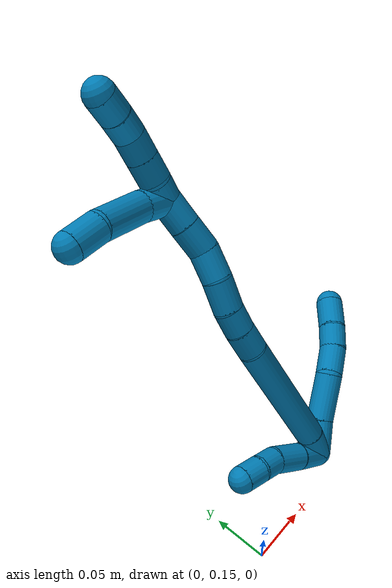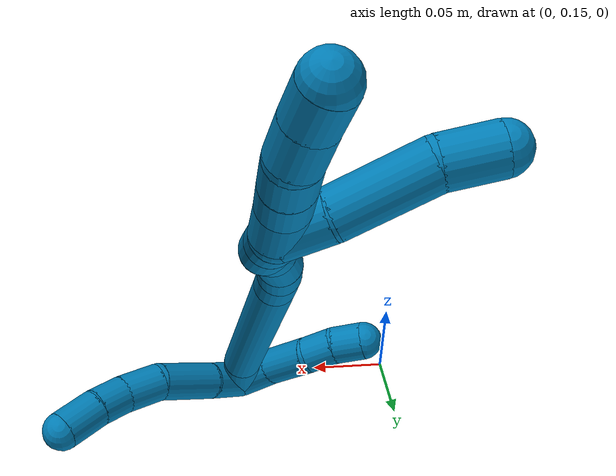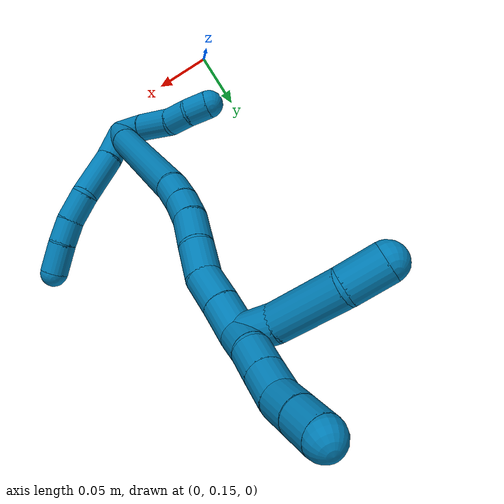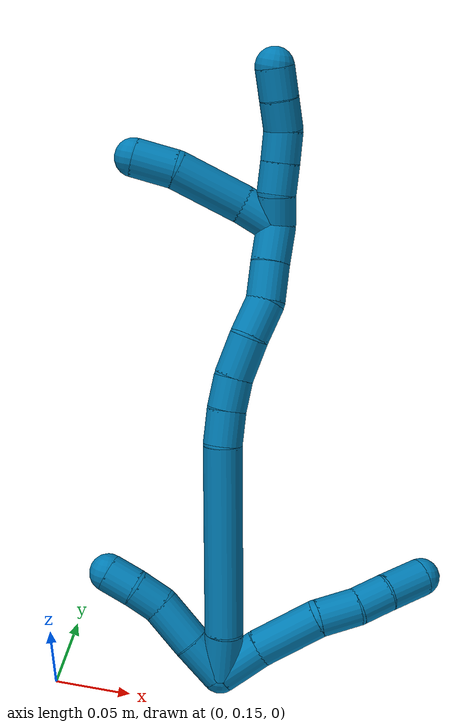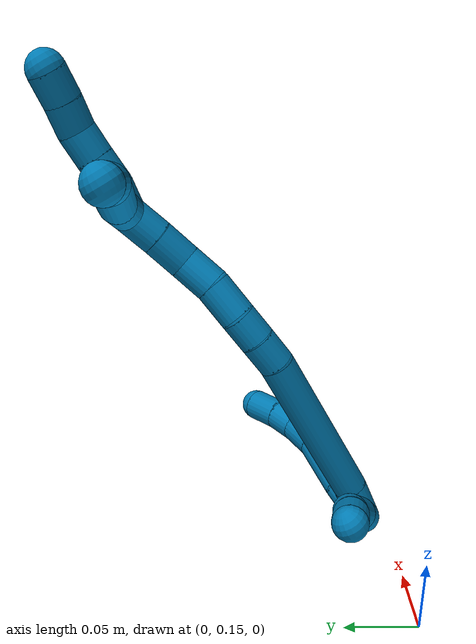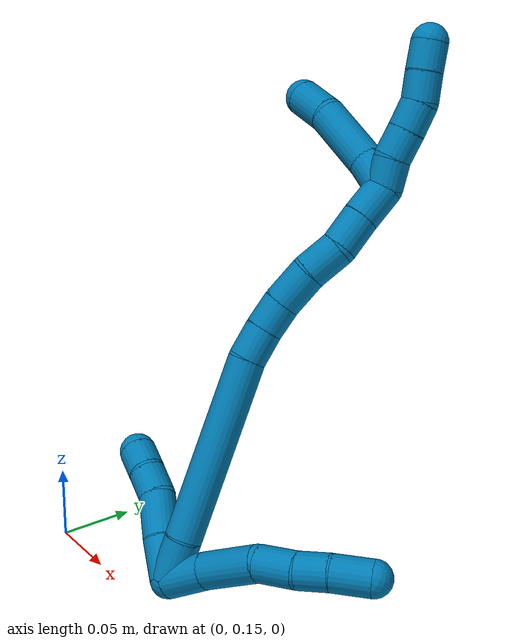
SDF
<sdf version="1.7">
 <world name="default">
  <model name="9">
   <static>0</static>
   <link name="9">
    <collision name="collision-cylinder-e_1_2_8">
     <pose>0.001088 0.011171 0.010316 -0.825137 0.071416 -0.031269</pose>
     <geometry><cylinder><radius>0.0125</radius><length>0.030489</length></cylinder></geometry>
     <surface>
      <friction><ode><mu>1.16</mu><mu2>1.16</mu2><slip1>0</slip1><slip2>0</slip2></ode></friction>
      <contact><ode><kp>1e+06</kp><kd>1</kd><max_vel>0</max_vel><min_depth>0.001</min_depth></ode></contact>
     </surface>
    </collision>
    <visual name="visual-cylinder-e_1_2_8">
     <pose>0.001088 0.011171 0.010316 -0.825137 0.071416 -0.031269</pose>
     <geometry><cylinder><radius>0.0125</radius><length>0.030489</length></cylinder></geometry>
     <material><ambient>0 0.490196 0.709804 1</ambient></material>
    </visual>
    <collision name="collision-cylinder-e_2_8_9">
     <pose>0.00541 0.03921 0.033685 -0.912263 0.150486 -0.073941</pose>
     <geometry><cylinder><radius>0.0125</radius><length>0.043146</length></cylinder></geometry>
     <surface>
      <friction><ode><mu>1.16</mu><mu2>1.16</mu2><slip1>0</slip1><slip2>0</slip2></ode></friction>
      <contact><ode><kp>1e+06</kp><kd>1</kd><max_vel>0</max_vel><min_depth>0.001</min_depth></ode></contact>
     </surface>
    </collision>
    <visual name="visual-cylinder-e_2_8_9">
     <pose>0.00541 0.03921 0.033685 -0.912263 0.150486 -0.073941</pose>
     <geometry><cylinder><radius>0.0125</radius><length>0.043146</length></cylinder></geometry>
     <material><ambient>0 0.490196 0.709804 1</ambient></material>
    </visual>
    <collision name="collision-cylinder-e_3_9_10">
     <pose>0.008207 0.068648 0.051662 -1.19742 -0.032324 0.022054</pose>
     <geometry><cylinder><radius>0.0125</radius><length>0.027012</length></cylinder></geometry>
     <surface>
      <friction><ode><mu>1.16</mu><mu2>1.16</mu2><slip1>0</slip1><slip2>0</slip2></ode></friction>
      <contact><ode><kp>1e+06</kp><kd>1</kd><max_vel>0</max_vel><min_depth>0.001</min_depth></ode></contact>
     </surface>
    </collision>
    <visual name="visual-cylinder-e_3_9_10">
     <pose>0.008207 0.068648 0.051662 -1.19742 -0.032324 0.022054</pose>
     <geometry><cylinder><radius>0.0125</radius><length>0.027012</length></cylinder></geometry>
     <material><ambient>0 0.490196 0.709804 1</ambient></material>
    </visual>
    <collision name="collision-cylinder-e_4_10_11">
     <pose>0.005812 0.09086 0.061459 -1.10282 -0.179328 0.110479</pose>
     <geometry><cylinder><radius>0.0125</radius><length>0.02196</length></cylinder></geometry>
     <surface>
      <friction><ode><mu>1.16</mu><mu2>1.16</mu2><slip1>0</slip1><slip2>0</slip2></ode></friction>
      <contact><ode><kp>1e+06</kp><kd>1</kd><max_vel>0</max_vel><min_depth>0.001</min_depth></ode></contact>
     </surface>
    </collision>
    <visual name="visual-cylinder-e_4_10_11">
     <pose>0.005812 0.09086 0.061459 -1.10282 -0.179328 0.110479</pose>
     <geometry><cylinder><radius>0.0125</radius><length>0.02196</length></cylinder></geometry>
     <material><ambient>0 0.490196 0.709804 1</ambient></material>
    </visual>
    <collision name="collision-cylinder-e_5_11_6">
     <pose>7e-05 0.112679 0.071332 -1.18124 -0.279915 0.188347</pose>
     <geometry><cylinder><radius>0.0125</radius><length>0.027393</length></cylinder></geometry>
     <surface>
      <friction><ode><mu>1.16</mu><mu2>1.16</mu2><slip1>0</slip1><slip2>0</slip2></ode></friction>
      <contact><ode><kp>1e+06</kp><kd>1</kd><max_vel>0</max_vel><min_depth>0.001</min_depth></ode></contact>
     </surface>
    </collision>
    <visual name="visual-cylinder-e_5_11_6">
     <pose>7e-05 0.112679 0.071332 -1.18124 -0.279915 0.188347</pose>
     <geometry><cylinder><radius>0.0125</radius><length>0.027393</length></cylinder></geometry>
     <material><ambient>0 0.490196 0.709804 1</ambient></material>
    </visual>
    <collision name="collision-cylinder-e_1_2_12">
     <pose>-0.003189 -0.01066 0.009152 0.861366 -0.223189 -0.102881</pose>
     <geometry><cylinder><radius>0.0125</radius><length>0.028813</length></cylinder></geometry>
     <surface>
      <friction><ode><mu>1.16</mu><mu2>1.16</mu2><slip1>0</slip1><slip2>0</slip2></ode></friction>
      <contact><ode><kp>1e+06</kp><kd>1</kd><max_vel>0</max_vel><min_depth>0.001</min_depth></ode></contact>
     </surface>
    </collision>
    <visual name="visual-cylinder-e_1_2_12">
     <pose>-0.003189 -0.01066 0.009152 0.861366 -0.223189 -0.102881</pose>
     <geometry><cylinder><radius>0.0125</radius><length>0.028813</length></cylinder></geometry>
     <material><ambient>0 0.490196 0.709804 1</ambient></material>
    </visual>
    <collision name="collision-cylinder-e_2_12_13">
     <pose>-0.011023 -0.032312 0.028312 0.832224 -0.302828 -0.134653</pose>
     <geometry><cylinder><radius>0.0125</radius><length>0.031151</length></cylinder></geometry>
     <surface>
      <friction><ode><mu>1.16</mu><mu2>1.16</mu2><slip1>0</slip1><slip2>0</slip2></ode></friction>
      <contact><ode><kp>1e+06</kp><kd>1</kd><max_vel>0</max_vel><min_depth>0.001</min_depth></ode></contact>
     </surface>
    </collision>
    <visual name="visual-cylinder-e_2_12_13">
     <pose>-0.011023 -0.032312 0.028312 0.832224 -0.302828 -0.134653</pose>
     <geometry><cylinder><radius>0.0125</radius><length>0.031151</length></cylinder></geometry>
     <material><ambient>0 0.490196 0.709804 1</ambient></material>
    </visual>
    <collision name="collision-cylinder-e_3_13_14">
     <pose>-0.017823 -0.052051 0.042702 1.10641 -0.216911 -0.134273</pose>
     <geometry><cylinder><radius>0.0125</radius><length>0.020032</length></cylinder></geometry>
     <surface>
      <friction><ode><mu>1.16</mu><mu2>1.16</mu2><slip1>0</slip1><slip2>0</slip2></ode></friction>
      <contact><ode><kp>1e+06</kp><kd>1</kd><max_vel>0</max_vel><min_depth>0.001</min_depth></ode></contact>
     </surface>
    </collision>
    <visual name="visual-cylinder-e_3_13_14">
     <pose>-0.017823 -0.052051 0.042702 1.10641 -0.216911 -0.134273</pose>
     <geometry><cylinder><radius>0.0125</radius><length>0.020032</length></cylinder></geometry>
     <material><ambient>0 0.490196 0.709804 1</ambient></material>
    </visual>
    <collision name="collision-cylinder-e_4_14_5">
     <pose>-0.023609 -0.069533 0.050326 1.21538 -0.371424 -0.259859</pose>
     <geometry><cylinder><radius>0.0125</radius><length>0.020004</length></cylinder></geometry>
     <surface>
      <friction><ode><mu>1.16</mu><mu2>1.16</mu2><slip1>0</slip1><slip2>0</slip2></ode></friction>
      <contact><ode><kp>1e+06</kp><kd>1</kd><max_vel>0</max_vel><min_depth>0.001</min_depth></ode></contact>
     </surface>
    </collision>
    <visual name="visual-cylinder-e_4_14_5">
     <pose>-0.023609 -0.069533 0.050326 1.21538 -0.371424 -0.259859</pose>
     <geometry><cylinder><radius>0.0125</radius><length>0.020004</length></cylinder></geometry>
     <material><ambient>0 0.490196 0.709804 1</ambient></material>
    </visual>
    <collision name="collision-cylinder-e_1_2_15">
     <pose>0.001216 -0.001343 0.014865 0.090079 0.081306 0.003666</pose>
     <geometry><cylinder><radius>0.0125</radius><length>0.02995</length></cylinder></geometry>
     <surface>
      <friction><ode><mu>1.16</mu><mu2>1.16</mu2><slip1>0</slip1><slip2>0</slip2></ode></friction>
      <contact><ode><kp>1e+06</kp><kd>1</kd><max_vel>0</max_vel><min_depth>0.001</min_depth></ode></contact>
     </surface>
    </collision>
    <visual name="visual-cylinder-e_1_2_15">
     <pose>0.001216 -0.001343 0.014865 0.090079 0.081306 0.003666</pose>
     <geometry><cylinder><radius>0.0125</radius><length>0.02995</length></cylinder></geometry>
     <material><ambient>0 0.490196 0.709804 1</ambient></material>
    </visual>
    <collision name="collision-cylinder-e_2_15_16">
     <pose>2.6e-05 -0.012204 0.091655 0.152523 -0.038389 -0.002934</pose>
     <geometry><cylinder><radius>0.0125</radius><length>0.125397</length></cylinder></geometry>
     <surface>
      <friction><ode><mu>1.16</mu><mu2>1.16</mu2><slip1>0</slip1><slip2>0</slip2></ode></friction>
      <contact><ode><kp>1e+06</kp><kd>1</kd><max_vel>0</max_vel><min_depth>0.001</min_depth></ode></contact>
     </surface>
    </collision>
    <visual name="visual-cylinder-e_2_15_16">
     <pose>2.6e-05 -0.012204 0.091655 0.152523 -0.038389 -0.002934</pose>
     <geometry><cylinder><radius>0.0125</radius><length>0.125397</length></cylinder></geometry>
     <material><ambient>0 0.490196 0.709804 1</ambient></material>
    </visual>
    <collision name="collision-cylinder-e_3_16_17">
     <pose>-0.004012 -0.021849 0.164775 0.011217 -0.144724 -0.000813</pose>
     <geometry><cylinder><radius>0.0125</radius><length>0.02263</length></cylinder></geometry>
     <surface>
      <friction><ode><mu>1.16</mu><mu2>1.16</mu2><slip1>0</slip1><slip2>0</slip2></ode></friction>
      <contact><ode><kp>1e+06</kp><kd>1</kd><max_vel>0</max_vel><min_depth>0.001</min_depth></ode></contact>
     </surface>
    </collision>
    <visual name="visual-cylinder-e_3_16_17">
     <pose>-0.004012 -0.021849 0.164775 0.011217 -0.144724 -0.000813</pose>
     <geometry><cylinder><radius>0.0125</radius><length>0.02263</length></cylinder></geometry>
     <material><ambient>0 0.490196 0.709804 1</ambient></material>
    </visual>
    <collision name="collision-cylinder-e_4_17_18">
     <pose>-0.007022 -0.021077 0.186244 -0.087116 -0.132854 0.005799</pose>
     <geometry><cylinder><radius>0.0125</radius><length>0.020806</length></cylinder></geometry>
     <surface>
      <friction><ode><mu>1.16</mu><mu2>1.16</mu2><slip1>0</slip1><slip2>0</slip2></ode></friction>
      <contact><ode><kp>1e+06</kp><kd>1</kd><max_vel>0</max_vel><min_depth>0.001</min_depth></ode></contact>
     </surface>
    </collision>
    <visual name="visual-cylinder-e_4_17_18">
     <pose>-0.007022 -0.021077 0.186244 -0.087116 -0.132854 0.005799</pose>
     <geometry><cylinder><radius>0.0125</radius><length>0.020806</length></cylinder></geometry>
     <material><ambient>0 0.490196 0.709804 1</ambient></material>
    </visual>
    <collision name="collision-cylinder-e_5_18_19">
     <pose>-0.009684 -0.016977 0.20946 -0.242607 -0.096005 0.011712</pose>
     <geometry><cylinder><radius>0.0125</radius><length>0.026792</length></cylinder></geometry>
     <surface>
      <friction><ode><mu>1.16</mu><mu2>1.16</mu2><slip1>0</slip1><slip2>0</slip2></ode></friction>
      <contact><ode><kp>1e+06</kp><kd>1</kd><max_vel>0</max_vel><min_depth>0.001</min_depth></ode></contact>
     </surface>
    </collision>
    <visual name="visual-cylinder-e_5_18_19">
     <pose>-0.009684 -0.016977 0.20946 -0.242607 -0.096005 0.011712</pose>
     <geometry><cylinder><radius>0.0125</radius><length>0.026792</length></cylinder></geometry>
     <material><ambient>0 0.490196 0.709804 1</ambient></material>
    </visual>
    <collision name="collision-cylinder-e_6_19_20">
     <pose>-0.014055 -0.009637 0.233729 -0.35018 -0.250632 0.044563</pose>
     <geometry><cylinder><radius>0.0125</radius><length>0.024891</length></cylinder></geometry>
     <surface>
      <friction><ode><mu>1.16</mu><mu2>1.16</mu2><slip1>0</slip1><slip2>0</slip2></ode></friction>
      <contact><ode><kp>1e+06</kp><kd>1</kd><max_vel>0</max_vel><min_depth>0.001</min_depth></ode></contact>
     </surface>
    </collision>
    <visual name="visual-cylinder-e_6_19_20">
     <pose>-0.014055 -0.009637 0.233729 -0.35018 -0.250632 0.044563</pose>
     <geometry><cylinder><radius>0.0125</radius><length>0.024891</length></cylinder></geometry>
     <material><ambient>0 0.490196 0.709804 1</ambient></material>
    </visual>
    <collision name="collision-cylinder-e_7_20_21">
     <pose>-0.020852 -0.005074 0.256777 -0.036436 -0.306375 0.005626</pose>
     <geometry><cylinder><radius>0.0125</radius><length>0.024608</length></cylinder></geometry>
     <surface>
      <friction><ode><mu>1.16</mu><mu2>1.16</mu2><slip1>0</slip1><slip2>0</slip2></ode></friction>
      <contact><ode><kp>1e+06</kp><kd>1</kd><max_vel>0</max_vel><min_depth>0.001</min_depth></ode></contact>
     </surface>
    </collision>
    <visual name="visual-cylinder-e_7_20_21">
     <pose>-0.020852 -0.005074 0.256777 -0.036436 -0.306375 0.005626</pose>
     <geometry><cylinder><radius>0.0125</radius><length>0.024608</length></cylinder></geometry>
     <material><ambient>0 0.490196 0.709804 1</ambient></material>
    </visual>
    <collision name="collision-cylinder-e_8_21_1">
     <pose>-0.028608 -0.003658 0.280247 -0.083897 -0.330532 0.014001</pose>
     <geometry><cylinder><radius>0.0125</radius><length>0.024927</length></cylinder></geometry>
     <surface>
      <friction><ode><mu>1.16</mu><mu2>1.16</mu2><slip1>0</slip1><slip2>0</slip2></ode></friction>
      <contact><ode><kp>1e+06</kp><kd>1</kd><max_vel>0</max_vel><min_depth>0.001</min_depth></ode></contact>
     </surface>
    </collision>
    <visual name="visual-cylinder-e_8_21_1">
     <pose>-0.028608 -0.003658 0.280247 -0.083897 -0.330532 0.014001</pose>
     <geometry><cylinder><radius>0.0125</radius><length>0.024927</length></cylinder></geometry>
     <material><ambient>0 0.490196 0.709804 1</ambient></material>
    </visual>
    <collision name="collision-cylinder-e_1_1_22">
     <pose>-0.035638 -0.013803 0.29682 1.16176 -0.241207 -0.158773</pose>
     <geometry><cylinder><radius>0.0125</radius><length>0.02499</length></cylinder></geometry>
     <surface>
      <friction><ode><mu>1.16</mu><mu2>1.16</mu2><slip1>0</slip1><slip2>0</slip2></ode></friction>
      <contact><ode><kp>1e+06</kp><kd>1</kd><max_vel>0</max_vel><min_depth>0.001</min_depth></ode></contact>
     </surface>
    </collision>
    <visual name="visual-cylinder-e_1_1_22">
     <pose>-0.035638 -0.013803 0.29682 1.16176 -0.241207 -0.158773</pose>
     <geometry><cylinder><radius>0.0125</radius><length>0.02499</length></cylinder></geometry>
     <material><ambient>0 0.490196 0.709804 1</ambient></material>
    </visual>
    <collision name="collision-cylinder-e_2_22_23">
     <pose>-0.041018 -0.04729 0.309445 1.23513 -0.100845 -0.071654</pose>
     <geometry><cylinder><radius>0.0125</radius><length>0.047594</length></cylinder></geometry>
     <surface>
      <friction><ode><mu>1.16</mu><mu2>1.16</mu2><slip1>0</slip1><slip2>0</slip2></ode></friction>
      <contact><ode><kp>1e+06</kp><kd>1</kd><max_vel>0</max_vel><min_depth>0.001</min_depth></ode></contact>
     </surface>
    </collision>
    <visual name="visual-cylinder-e_2_22_23">
     <pose>-0.041018 -0.04729 0.309445 1.23513 -0.100845 -0.071654</pose>
     <geometry><cylinder><radius>0.0125</radius><length>0.047594</length></cylinder></geometry>
     <material><ambient>0 0.490196 0.709804 1</ambient></material>
    </visual>
    <collision name="collision-cylinder-e_3_23_4">
     <pose>-0.047032 -0.082766 0.318874 1.44713 -0.267076 -0.236241</pose>
     <geometry><cylinder><radius>0.0125</radius><length>0.027416</length></cylinder></geometry>
     <surface>
      <friction><ode><mu>1.16</mu><mu2>1.16</mu2><slip1>0</slip1><slip2>0</slip2></ode></friction>
      <contact><ode><kp>1e+06</kp><kd>1</kd><max_vel>0</max_vel><min_depth>0.001</min_depth></ode></contact>
     </surface>
    </collision>
    <visual name="visual-cylinder-e_3_23_4">
     <pose>-0.047032 -0.082766 0.318874 1.44713 -0.267076 -0.236241</pose>
     <geometry><cylinder><radius>0.0125</radius><length>0.027416</length></cylinder></geometry>
     <material><ambient>0 0.490196 0.709804 1</ambient></material>
    </visual>
    <collision name="collision-cylinder-e_1_1_24">
     <pose>-0.031769 -0.004454 0.301794 0.179978 0.088525 0.007993</pose>
     <geometry><cylinder><radius>0.0125</radius><length>0.02</length></cylinder></geometry>
     <surface>
      <friction><ode><mu>1.16</mu><mu2>1.16</mu2><slip1>0</slip1><slip2>0</slip2></ode></friction>
      <contact><ode><kp>1e+06</kp><kd>1</kd><max_vel>0</max_vel><min_depth>0.001</min_depth></ode></contact>
     </surface>
    </collision>
    <visual name="visual-cylinder-e_1_1_24">
     <pose>-0.031769 -0.004454 0.301794 0.179978 0.088525 0.007993</pose>
     <geometry><cylinder><radius>0.0125</radius><length>0.02</length></cylinder></geometry>
     <material><ambient>0 0.490196 0.709804 1</ambient></material>
    </visual>
    <collision name="collision-cylinder-e_2_24_25">
     <pose>-0.031613 -0.006434 0.321566 0.019808 -0.072848 -0.000722</pose>
     <geometry><cylinder><radius>0.0125</radius><length>0.02</length></cylinder></geometry>
     <surface>
      <friction><ode><mu>1.16</mu><mu2>1.16</mu2><slip1>0</slip1><slip2>0</slip2></ode></friction>
      <contact><ode><kp>1e+06</kp><kd>1</kd><max_vel>0</max_vel><min_depth>0.001</min_depth></ode></contact>
     </surface>
    </collision>
    <visual name="visual-cylinder-e_2_24_25">
     <pose>-0.031613 -0.006434 0.321566 0.019808 -0.072848 -0.000722</pose>
     <geometry><cylinder><radius>0.0125</radius><length>0.02</length></cylinder></geometry>
     <material><ambient>0 0.490196 0.709804 1</ambient></material>
    </visual>
    <collision name="collision-cylinder-e_3_25_26">
     <pose>-0.032846 -0.007093 0.341514 0.046174 -0.050517 -0.001167</pose>
     <geometry><cylinder><radius>0.0125</radius><length>0.02</length></cylinder></geometry>
     <surface>
      <friction><ode><mu>1.16</mu><mu2>1.16</mu2><slip1>0</slip1><slip2>0</slip2></ode></friction>
      <contact><ode><kp>1e+06</kp><kd>1</kd><max_vel>0</max_vel><min_depth>0.001</min_depth></ode></contact>
     </surface>
    </collision>
    <visual name="visual-cylinder-e_3_25_26">
     <pose>-0.032846 -0.007093 0.341514 0.046174 -0.050517 -0.001167</pose>
     <geometry><cylinder><radius>0.0125</radius><length>0.02</length></cylinder></geometry>
     <material><ambient>0 0.490196 0.709804 1</ambient></material>
    </visual>
    <collision name="collision-cylinder-e_4_26_27">
     <pose>-0.032601 -0.010658 0.360967 0.316596 0.075002 0.011978</pose>
     <geometry><cylinder><radius>0.0125</radius><length>0.02</length></cylinder></geometry>
     <surface>
      <friction><ode><mu>1.16</mu><mu2>1.16</mu2><slip1>0</slip1><slip2>0</slip2></ode></friction>
      <contact><ode><kp>1e+06</kp><kd>1</kd><max_vel>0</max_vel><min_depth>0.001</min_depth></ode></contact>
     </surface>
    </collision>
    <visual name="visual-cylinder-e_4_26_27">
     <pose>-0.032601 -0.010658 0.360967 0.316596 0.075002 0.011978</pose>
     <geometry><cylinder><radius>0.0125</radius><length>0.02</length></cylinder></geometry>
     <material><ambient>0 0.490196 0.709804 1</ambient></material>
    </visual>
    <collision name="collision-cylinder-e_5_27_3">
     <pose>-0.031701 -0.016758 0.379983 0.304271 0.015104 0.002316</pose>
     <geometry><cylinder><radius>0.0125</radius><length>0.02</length></cylinder></geometry>
     <surface>
      <friction><ode><mu>1.16</mu><mu2>1.16</mu2><slip1>0</slip1><slip2>0</slip2></ode></friction>
      <contact><ode><kp>1e+06</kp><kd>1</kd><max_vel>0</max_vel><min_depth>0.001</min_depth></ode></contact>
     </surface>
    </collision>
    <visual name="visual-cylinder-e_5_27_3">
     <pose>-0.031701 -0.016758 0.379983 0.304271 0.015104 0.002316</pose>
     <geometry><cylinder><radius>0.0125</radius><length>0.02</length></cylinder></geometry>
     <material><ambient>0 0.490196 0.709804 1</ambient></material>
    </visual>
    <collision name="collision-sphere-3">
     <pose>-0.03155 -0.019754 0.389522 0 -0 0</pose>
     <geometry><sphere><radius>0.0125</radius></sphere></geometry>
     <surface>
      <friction><ode><mu>1.16</mu><mu2>1.16</mu2><slip1>0</slip1><slip2>0</slip2></ode></friction>
      <contact><ode><kp>1e+06</kp><kd>1</kd><max_vel>0</max_vel><min_depth>0.001</min_depth></ode></contact>
     </surface>
    </collision>
    <visual name="visual-sphere-3">
     <pose>-0.03155 -0.019754 0.389522 0 -0 0</pose>
     <geometry><sphere><radius>0.0125</radius></sphere></geometry>
     <material><ambient>0 0.490196 0.709804 1</ambient></material>
    </visual>
    <collision name="collision-sphere-27">
     <pose>-0.031852 -0.013763 0.370443 0 -0 0</pose>
     <geometry><sphere><radius>0.0125</radius></sphere></geometry>
     <surface>
      <friction><ode><mu>1.16</mu><mu2>1.16</mu2><slip1>0</slip1><slip2>0</slip2></ode></friction>
      <contact><ode><kp>1e+06</kp><kd>1</kd><max_vel>0</max_vel><min_depth>0.001</min_depth></ode></contact>
     </surface>
    </collision>
    <visual name="visual-sphere-27">
     <pose>-0.031852 -0.013763 0.370443 0 -0 0</pose>
     <geometry><sphere><radius>0.0125</radius></sphere></geometry>
     <material><ambient>0 0.490196 0.709804 1</ambient></material>
    </visual>
    <collision name="collision-sphere-26">
     <pose>-0.033351 -0.007554 0.35149 0 -0 0</pose>
     <geometry><sphere><radius>0.0125</radius></sphere></geometry>
     <surface>
      <friction><ode><mu>1.16</mu><mu2>1.16</mu2><slip1>0</slip1><slip2>0</slip2></ode></friction>
      <contact><ode><kp>1e+06</kp><kd>1</kd><max_vel>0</max_vel><min_depth>0.001</min_depth></ode></contact>
     </surface>
    </collision>
    <visual name="visual-sphere-26">
     <pose>-0.033351 -0.007554 0.35149 0 -0 0</pose>
     <geometry><sphere><radius>0.0125</radius></sphere></geometry>
     <material><ambient>0 0.490196 0.709804 1</ambient></material>
    </visual>
    <collision name="collision-sphere-25">
     <pose>-0.032341 -0.006632 0.331537 0 -0 0</pose>
     <geometry><sphere><radius>0.0125</radius></sphere></geometry>
     <surface>
      <friction><ode><mu>1.16</mu><mu2>1.16</mu2><slip1>0</slip1><slip2>0</slip2></ode></friction>
      <contact><ode><kp>1e+06</kp><kd>1</kd><max_vel>0</max_vel><min_depth>0.001</min_depth></ode></contact>
     </surface>
    </collision>
    <visual name="visual-sphere-25">
     <pose>-0.032341 -0.006632 0.331537 0 -0 0</pose>
     <geometry><sphere><radius>0.0125</radius></sphere></geometry>
     <material><ambient>0 0.490196 0.709804 1</ambient></material>
    </visual>
    <collision name="collision-sphere-24">
     <pose>-0.030885 -0.006237 0.311594 0 -0 0</pose>
     <geometry><sphere><radius>0.0125</radius></sphere></geometry>
     <surface>
      <friction><ode><mu>1.16</mu><mu2>1.16</mu2><slip1>0</slip1><slip2>0</slip2></ode></friction>
      <contact><ode><kp>1e+06</kp><kd>1</kd><max_vel>0</max_vel><min_depth>0.001</min_depth></ode></contact>
     </surface>
    </collision>
    <visual name="visual-sphere-24">
     <pose>-0.030885 -0.006237 0.311594 0 -0 0</pose>
     <geometry><sphere><radius>0.0125</radius></sphere></geometry>
     <material><ambient>0 0.490196 0.709804 1</ambient></material>
    </visual>
    <collision name="collision-sphere-4">
     <pose>-0.05065 -0.095887 0.320505 0 -0 0</pose>
     <geometry><sphere><radius>0.0125</radius></sphere></geometry>
     <surface>
      <friction><ode><mu>1.16</mu><mu2>1.16</mu2><slip1>0</slip1><slip2>0</slip2></ode></friction>
      <contact><ode><kp>1e+06</kp><kd>1</kd><max_vel>0</max_vel><min_depth>0.001</min_depth></ode></contact>
     </surface>
    </collision>
    <visual name="visual-sphere-4">
     <pose>-0.05065 -0.095887 0.320505 0 -0 0</pose>
     <geometry><sphere><radius>0.0125</radius></sphere></geometry>
     <material><ambient>0 0.490196 0.709804 1</ambient></material>
    </visual>
    <collision name="collision-sphere-23">
     <pose>-0.043414 -0.069645 0.317244 0 -0 0</pose>
     <geometry><sphere><radius>0.0125</radius></sphere></geometry>
     <surface>
      <friction><ode><mu>1.16</mu><mu2>1.16</mu2><slip1>0</slip1><slip2>0</slip2></ode></friction>
      <contact><ode><kp>1e+06</kp><kd>1</kd><max_vel>0</max_vel><min_depth>0.001</min_depth></ode></contact>
     </surface>
    </collision>
    <visual name="visual-sphere-23">
     <pose>-0.043414 -0.069645 0.317244 0 -0 0</pose>
     <geometry><sphere><radius>0.0125</radius></sphere></geometry>
     <material><ambient>0 0.490196 0.709804 1</ambient></material>
    </visual>
    <collision name="collision-sphere-22">
     <pose>-0.038623 -0.024935 0.301646 0 -0 0</pose>
     <geometry><sphere><radius>0.0125</radius></sphere></geometry>
     <surface>
      <friction><ode><mu>1.16</mu><mu2>1.16</mu2><slip1>0</slip1><slip2>0</slip2></ode></friction>
      <contact><ode><kp>1e+06</kp><kd>1</kd><max_vel>0</max_vel><min_depth>0.001</min_depth></ode></contact>
     </surface>
    </collision>
    <visual name="visual-sphere-22">
     <pose>-0.038623 -0.024935 0.301646 0 -0 0</pose>
     <geometry><sphere><radius>0.0125</radius></sphere></geometry>
     <material><ambient>0 0.490196 0.709804 1</ambient></material>
    </visual>
    <collision name="collision-sphere-1">
     <pose>-0.032653 -0.00267 0.291994 0 -0 0</pose>
     <geometry><sphere><radius>0.0125</radius></sphere></geometry>
     <surface>
      <friction><ode><mu>1.16</mu><mu2>1.16</mu2><slip1>0</slip1><slip2>0</slip2></ode></friction>
      <contact><ode><kp>1e+06</kp><kd>1</kd><max_vel>0</max_vel><min_depth>0.001</min_depth></ode></contact>
     </surface>
    </collision>
    <visual name="visual-sphere-1">
     <pose>-0.032653 -0.00267 0.291994 0 -0 0</pose>
     <geometry><sphere><radius>0.0125</radius></sphere></geometry>
     <material><ambient>0 0.490196 0.709804 1</ambient></material>
    </visual>
    <collision name="collision-sphere-21">
     <pose>-0.024563 -0.004646 0.2685 0 -0 0</pose>
     <geometry><sphere><radius>0.0125</radius></sphere></geometry>
     <surface>
      <friction><ode><mu>1.16</mu><mu2>1.16</mu2><slip1>0</slip1><slip2>0</slip2></ode></friction>
      <contact><ode><kp>1e+06</kp><kd>1</kd><max_vel>0</max_vel><min_depth>0.001</min_depth></ode></contact>
     </surface>
    </collision>
    <visual name="visual-sphere-21">
     <pose>-0.024563 -0.004646 0.2685 0 -0 0</pose>
     <geometry><sphere><radius>0.0125</radius></sphere></geometry>
     <material><ambient>0 0.490196 0.709804 1</ambient></material>
    </visual>
    <collision name="collision-sphere-6">
     <pose>-0.003714 0.124856 0.076331 0 -0 0</pose>
     <geometry><sphere><radius>0.0125</radius></sphere></geometry>
     <surface>
      <friction><ode><mu>1.16</mu><mu2>1.16</mu2><slip1>0</slip1><slip2>0</slip2></ode></friction>
      <contact><ode><kp>1e+06</kp><kd>1</kd><max_vel>0</max_vel><min_depth>0.001</min_depth></ode></contact>
     </surface>
    </collision>
    <visual name="visual-sphere-6">
     <pose>-0.003714 0.124856 0.076331 0 -0 0</pose>
     <geometry><sphere><radius>0.0125</radius></sphere></geometry>
     <material><ambient>0 0.490196 0.709804 1</ambient></material>
    </visual>
    <collision name="collision-sphere-11">
     <pose>0.003854 0.100502 0.066332 0 -0 0</pose>
     <geometry><sphere><radius>0.0125</radius></sphere></geometry>
     <surface>
      <friction><ode><mu>1.16</mu><mu2>1.16</mu2><slip1>0</slip1><slip2>0</slip2></ode></friction>
      <contact><ode><kp>1e+06</kp><kd>1</kd><max_vel>0</max_vel><min_depth>0.001</min_depth></ode></contact>
     </surface>
    </collision>
    <visual name="visual-sphere-11">
     <pose>0.003854 0.100502 0.066332 0 -0 0</pose>
     <geometry><sphere><radius>0.0125</radius></sphere></geometry>
     <material><ambient>0 0.490196 0.709804 1</ambient></material>
    </visual>
    <collision name="collision-sphere-10">
     <pose>0.007771 0.081217 0.056586 0 -0 0</pose>
     <geometry><sphere><radius>0.0125</radius></sphere></geometry>
     <surface>
      <friction><ode><mu>1.16</mu><mu2>1.16</mu2><slip1>0</slip1><slip2>0</slip2></ode></friction>
      <contact><ode><kp>1e+06</kp><kd>1</kd><max_vel>0</max_vel><min_depth>0.001</min_depth></ode></contact>
     </surface>
    </collision>
    <visual name="visual-sphere-10">
     <pose>0.007771 0.081217 0.056586 0 -0 0</pose>
     <geometry><sphere><radius>0.0125</radius></sphere></geometry>
     <material><ambient>0 0.490196 0.709804 1</ambient></material>
    </visual>
    <collision name="collision-sphere-9">
     <pose>0.008644 0.056079 0.046738 0 -0 0</pose>
     <geometry><sphere><radius>0.0125</radius></sphere></geometry>
     <surface>
      <friction><ode><mu>1.16</mu><mu2>1.16</mu2><slip1>0</slip1><slip2>0</slip2></ode></friction>
      <contact><ode><kp>1e+06</kp><kd>1</kd><max_vel>0</max_vel><min_depth>0.001</min_depth></ode></contact>
     </surface>
    </collision>
    <visual name="visual-sphere-9">
     <pose>0.008644 0.056079 0.046738 0 -0 0</pose>
     <geometry><sphere><radius>0.0125</radius></sphere></geometry>
     <material><ambient>0 0.490196 0.709804 1</ambient></material>
    </visual>
    <collision name="collision-sphere-2">
     <geometry><sphere><radius>0.0125</radius></sphere></geometry>
     <surface>
      <friction><ode><mu>1.16</mu><mu2>1.16</mu2><slip1>0</slip1><slip2>0</slip2></ode></friction>
      <contact><ode><kp>1e+06</kp><kd>1</kd><max_vel>0</max_vel><min_depth>0.001</min_depth></ode></contact>
     </surface>
    </collision>
    <visual name="visual-sphere-2">
     <geometry><sphere><radius>0.0125</radius></sphere></geometry>
     <material><ambient>0 0.490196 0.709804 1</ambient></material>
    </visual>
    <collision name="collision-sphere-19">
     <pose>-0.010968 -0.013773 0.222404 0 -0 0</pose>
     <geometry><sphere><radius>0.0125</radius></sphere></geometry>
     <surface>
      <friction><ode><mu>1.16</mu><mu2>1.16</mu2><slip1>0</slip1><slip2>0</slip2></ode></friction>
      <contact><ode><kp>1e+06</kp><kd>1</kd><max_vel>0</max_vel><min_depth>0.001</min_depth></ode></contact>
     </surface>
    </collision>
    <visual name="visual-sphere-19">
     <pose>-0.010968 -0.013773 0.222404 0 -0 0</pose>
     <geometry><sphere><radius>0.0125</radius></sphere></geometry>
     <material><ambient>0 0.490196 0.709804 1</ambient></material>
    </visual>
    <collision name="collision-sphere-8">
     <pose>0.002176 0.022341 0.020633 0 -0 0</pose>
     <geometry><sphere><radius>0.0125</radius></sphere></geometry>
     <surface>
      <friction><ode><mu>1.16</mu><mu2>1.16</mu2><slip1>0</slip1><slip2>0</slip2></ode></friction>
      <contact><ode><kp>1e+06</kp><kd>1</kd><max_vel>0</max_vel><min_depth>0.001</min_depth></ode></contact>
     </surface>
    </collision>
    <visual name="visual-sphere-8">
     <pose>0.002176 0.022341 0.020633 0 -0 0</pose>
     <geometry><sphere><radius>0.0125</radius></sphere></geometry>
     <material><ambient>0 0.490196 0.709804 1</ambient></material>
    </visual>
    <collision name="collision-sphere-12">
     <pose>-0.006378 -0.021319 0.018304 0 -0 0</pose>
     <geometry><sphere><radius>0.0125</radius></sphere></geometry>
     <surface>
      <friction><ode><mu>1.16</mu><mu2>1.16</mu2><slip1>0</slip1><slip2>0</slip2></ode></friction>
      <contact><ode><kp>1e+06</kp><kd>1</kd><max_vel>0</max_vel><min_depth>0.001</min_depth></ode></contact>
     </surface>
    </collision>
    <visual name="visual-sphere-12">
     <pose>-0.006378 -0.021319 0.018304 0 -0 0</pose>
     <geometry><sphere><radius>0.0125</radius></sphere></geometry>
     <material><ambient>0 0.490196 0.709804 1</ambient></material>
    </visual>
    <collision name="collision-sphere-13">
     <pose>-0.015668 -0.043306 0.038321 0 -0 0</pose>
     <geometry><sphere><radius>0.0125</radius></sphere></geometry>
     <surface>
      <friction><ode><mu>1.16</mu><mu2>1.16</mu2><slip1>0</slip1><slip2>0</slip2></ode></friction>
      <contact><ode><kp>1e+06</kp><kd>1</kd><max_vel>0</max_vel><min_depth>0.001</min_depth></ode></contact>
     </surface>
    </collision>
    <visual name="visual-sphere-13">
     <pose>-0.015668 -0.043306 0.038321 0 -0 0</pose>
     <geometry><sphere><radius>0.0125</radius></sphere></geometry>
     <material><ambient>0 0.490196 0.709804 1</ambient></material>
    </visual>
    <collision name="collision-sphere-14">
     <pose>-0.019979 -0.060796 0.047083 0 -0 0</pose>
     <geometry><sphere><radius>0.0125</radius></sphere></geometry>
     <surface>
      <friction><ode><mu>1.16</mu><mu2>1.16</mu2><slip1>0</slip1><slip2>0</slip2></ode></friction>
      <contact><ode><kp>1e+06</kp><kd>1</kd><max_vel>0</max_vel><min_depth>0.001</min_depth></ode></contact>
     </surface>
    </collision>
    <visual name="visual-sphere-14">
     <pose>-0.019979 -0.060796 0.047083 0 -0 0</pose>
     <geometry><sphere><radius>0.0125</radius></sphere></geometry>
     <material><ambient>0 0.490196 0.709804 1</ambient></material>
    </visual>
    <collision name="collision-sphere-5">
     <pose>-0.027239 -0.078271 0.053569 0 -0 0</pose>
     <geometry><sphere><radius>0.0125</radius></sphere></geometry>
     <surface>
      <friction><ode><mu>1.16</mu><mu2>1.16</mu2><slip1>0</slip1><slip2>0</slip2></ode></friction>
      <contact><ode><kp>1e+06</kp><kd>1</kd><max_vel>0</max_vel><min_depth>0.001</min_depth></ode></contact>
     </surface>
    </collision>
    <visual name="visual-sphere-5">
     <pose>-0.027239 -0.078271 0.053569 0 -0 0</pose>
     <geometry><sphere><radius>0.0125</radius></sphere></geometry>
     <material><ambient>0 0.490196 0.709804 1</ambient></material>
    </visual>
    <collision name="collision-sphere-15">
     <pose>0.002432 -0.002685 0.02973 0 -0 0</pose>
     <geometry><sphere><radius>0.0125</radius></sphere></geometry>
     <surface>
      <friction><ode><mu>1.16</mu><mu2>1.16</mu2><slip1>0</slip1><slip2>0</slip2></ode></friction>
      <contact><ode><kp>1e+06</kp><kd>1</kd><max_vel>0</max_vel><min_depth>0.001</min_depth></ode></contact>
     </surface>
    </collision>
    <visual name="visual-sphere-15">
     <pose>0.002432 -0.002685 0.02973 0 -0 0</pose>
     <geometry><sphere><radius>0.0125</radius></sphere></geometry>
     <material><ambient>0 0.490196 0.709804 1</ambient></material>
    </visual>
    <collision name="collision-sphere-16">
     <pose>-0.00238 -0.021723 0.153579 0 -0 0</pose>
     <geometry><sphere><radius>0.0125</radius></sphere></geometry>
     <surface>
      <friction><ode><mu>1.16</mu><mu2>1.16</mu2><slip1>0</slip1><slip2>0</slip2></ode></friction>
      <contact><ode><kp>1e+06</kp><kd>1</kd><max_vel>0</max_vel><min_depth>0.001</min_depth></ode></contact>
     </surface>
    </collision>
    <visual name="visual-sphere-16">
     <pose>-0.00238 -0.021723 0.153579 0 -0 0</pose>
     <geometry><sphere><radius>0.0125</radius></sphere></geometry>
     <material><ambient>0 0.490196 0.709804 1</ambient></material>
    </visual>
    <collision name="collision-sphere-17">
     <pose>-0.005644 -0.021974 0.175971 0 -0 0</pose>
     <geometry><sphere><radius>0.0125</radius></sphere></geometry>
     <surface>
      <friction><ode><mu>1.16</mu><mu2>1.16</mu2><slip1>0</slip1><slip2>0</slip2></ode></friction>
      <contact><ode><kp>1e+06</kp><kd>1</kd><max_vel>0</max_vel><min_depth>0.001</min_depth></ode></contact>
     </surface>
    </collision>
    <visual name="visual-sphere-17">
     <pose>-0.005644 -0.021974 0.175971 0 -0 0</pose>
     <geometry><sphere><radius>0.0125</radius></sphere></geometry>
     <material><ambient>0 0.490196 0.709804 1</ambient></material>
    </visual>
    <collision name="collision-sphere-18">
     <pose>-0.0084 -0.02018 0.196516 0 -0 0</pose>
     <geometry><sphere><radius>0.0125</radius></sphere></geometry>
     <surface>
      <friction><ode><mu>1.16</mu><mu2>1.16</mu2><slip1>0</slip1><slip2>0</slip2></ode></friction>
      <contact><ode><kp>1e+06</kp><kd>1</kd><max_vel>0</max_vel><min_depth>0.001</min_depth></ode></contact>
     </surface>
    </collision>
    <visual name="visual-sphere-18">
     <pose>-0.0084 -0.02018 0.196516 0 -0 0</pose>
     <geometry><sphere><radius>0.0125</radius></sphere></geometry>
     <material><ambient>0 0.490196 0.709804 1</ambient></material>
    </visual>
    <collision name="collision-sphere-20">
     <pose>-0.017142 -0.005501 0.245053 0 -0 0</pose>
     <geometry><sphere><radius>0.0125</radius></sphere></geometry>
     <surface>
      <friction><ode><mu>1.16</mu><mu2>1.16</mu2><slip1>0</slip1><slip2>0</slip2></ode></friction>
      <contact><ode><kp>1e+06</kp><kd>1</kd><max_vel>0</max_vel><min_depth>0.001</min_depth></ode></contact>
     </surface>
    </collision>
    <visual name="visual-sphere-20">
     <pose>-0.017142 -0.005501 0.245053 0 -0 0</pose>
     <geometry><sphere><radius>0.0125</radius></sphere></geometry>
     <material><ambient>0 0.490196 0.709804 1</ambient></material>
    </visual>
    <inertial>
     <pose>-0.013363 -0.005288 0.15834 0 -0 0</pose>
     <mass>0.75</mass>
     <inertia>
      <ixx>0.000226</ixx>
      <ixy>0</ixy>
      <ixz>0</ixz>
      <iyy>0.000203</iyy>
      <iyz>0</iyz>
      <izz>8.8e-05</izz>
     </inertia>
    </inertial>
   </link>
   <pose>0.10659 0.169631 0.011496 -0.25223 -0.459883 -1.14784</pose>
  </model>
 </world>
</sdf>
